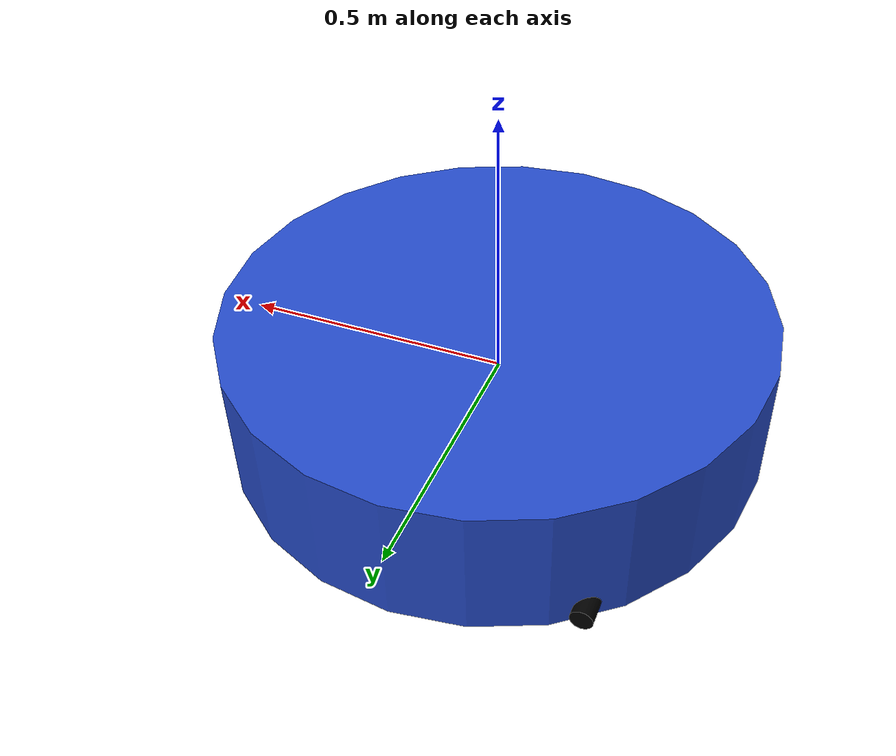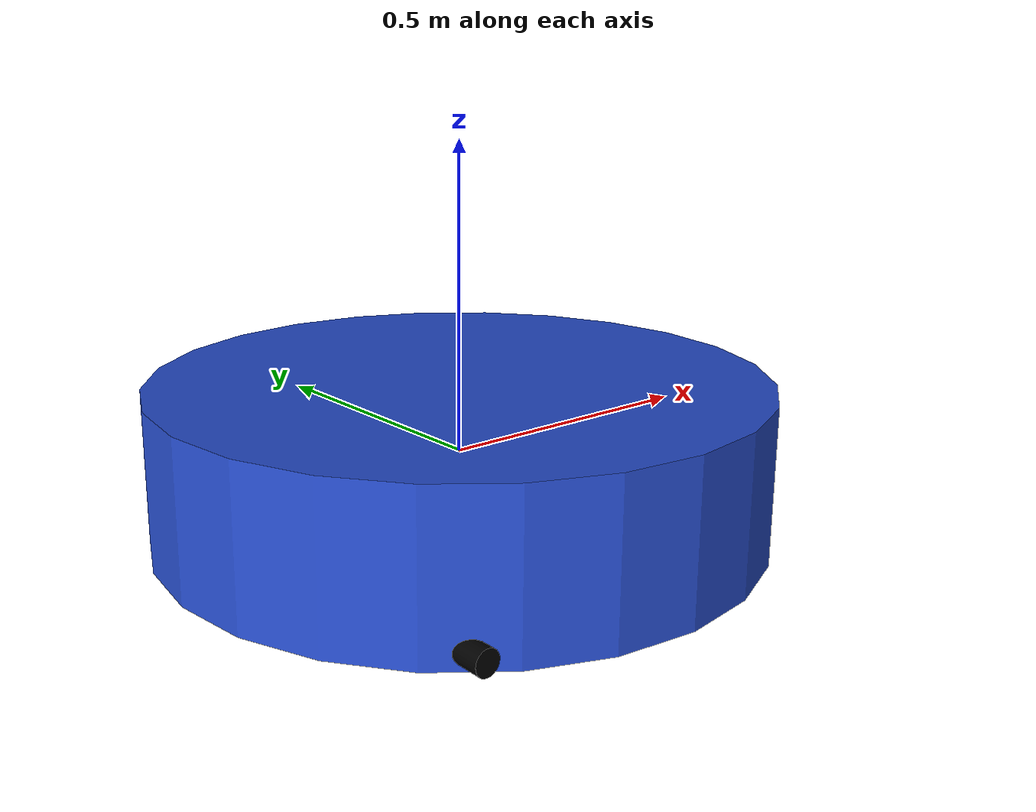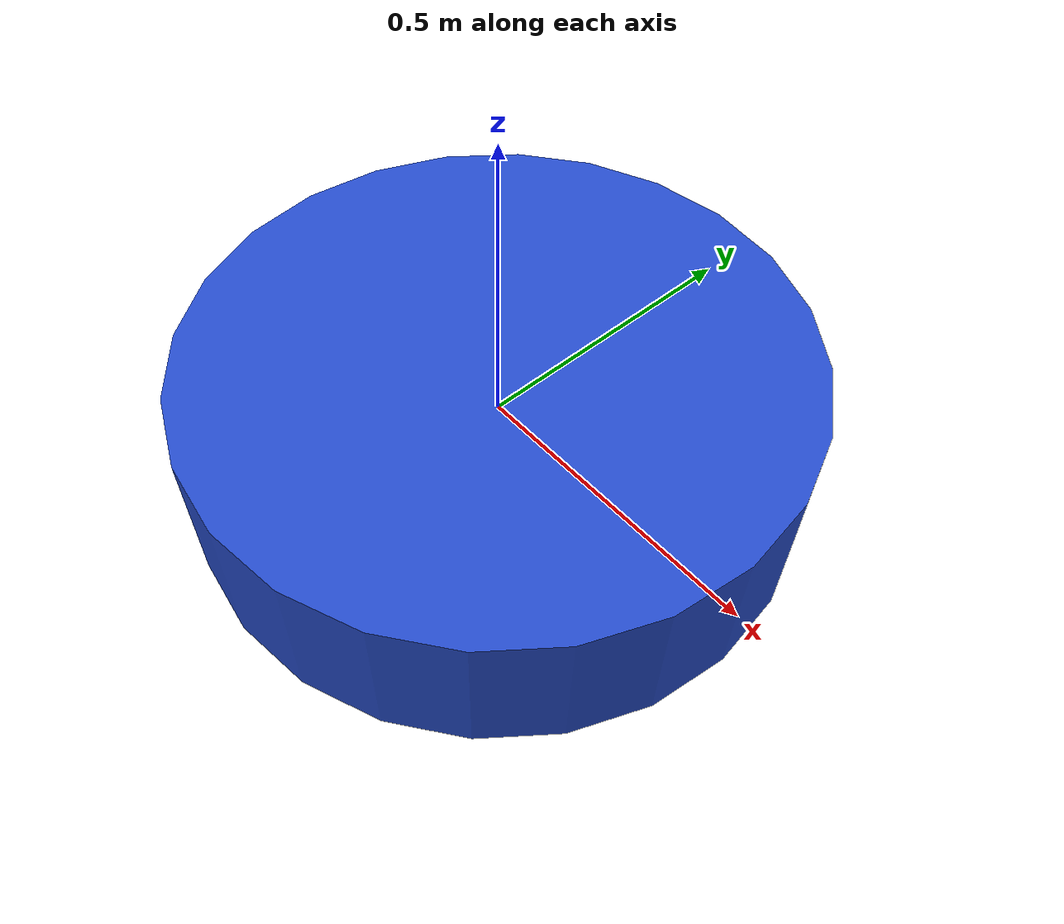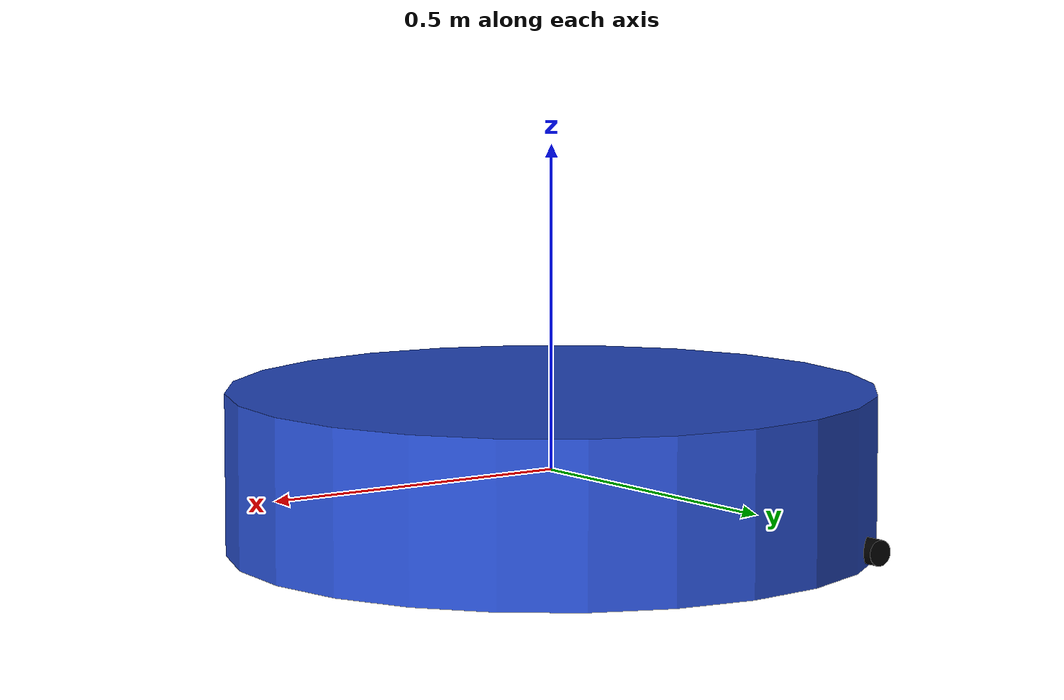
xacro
<?xml version="1.0" ?>
<!-- |    This document was autogenerated by xacro from sam_bot_description.urdf       | -->
<!-- |    EDITING THIS FILE BY HAND IS NOT RECOMMENDED                                 | -->
<robot name="differential_drive_robot">
  <link name="base_link">
    <visual>
      <geometry>
        <cylinder length="0.25" radius="0.5"/>
      </geometry>
      <material name="blue"/>
    </visual>
    <collision>
      <geometry>
        <cylinder length="0.25" radius="0.5"/>
      </geometry>
    </collision>
    <inertial>
      <mass value="10.0"/>
      <inertia ixx="1.0" ixy="0.0" ixz="0.0" iyy="1.0" iyz="0.0" izz="1.0"/>
    </inertial>
  </link>
  <!-- Left Wheel -->
  <link name="left_wheel">
    <visual>
      <geometry>
        <cylinder length="0.05" radius="0.02"/>
      </geometry>
      <material name="black">
        <color rgba="0 0 0 1"/>
      </material>
    </visual>
    <collision>
      <geometry>
        <cylinder length="0.05" radius="0.02"/>
      </geometry>
    </collision>
    <inertial>
      <mass value="1.0"/>
      <inertia ixx="0.01" ixy="0.0" ixz="0.0" iyy="0.01" iyz="0.0" izz="0.01"/>
    </inertial>
  </link>
  <!-- Right Wheel -->
  <link name="right_wheel">
    <visual>
      <geometry>
        <cylinder length="0.05" radius="0.02"/>
      </geometry>
      <material name="black">
        <color rgba="0 0 0 1"/>
      </material>
    </visual>
    <collision>
      <geometry>
        <cylinder length="0.05" radius="0.02"/>
      </geometry>
    </collision>
    <inertial>
      <mass value="1.0"/>
      <inertia ixx="0.01" ixy="0.0" ixz="0.0" iyy="0.01" iyz="0.0" izz="0.01"/>
    </inertial>
  </link>
  <!-- Joints -->
  <joint name="left_wheel_joint" type="continuous">
    <parent link="base_link"/>
    <child link="left_wheel"/>
    <origin rpy="0 1.5708 1.5708" xyz="-0.3 0.4 -0.1"/>
    <axis xyz="0 0 1"/>
  </joint>
  <joint name="right_wheel_joint" type="continuous">
    <parent link="base_link"/>
    <child link="right_wheel"/>
    <origin rpy="0 1.5708 1.5708" xyz="-0.3 -0.4 -0.1"/>
    <axis xyz="0 0 1"/>
  </joint>
</robot>
